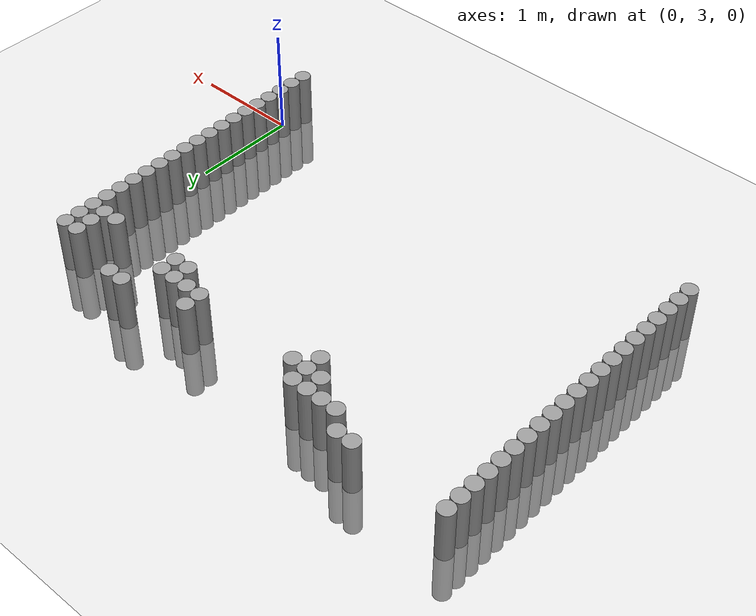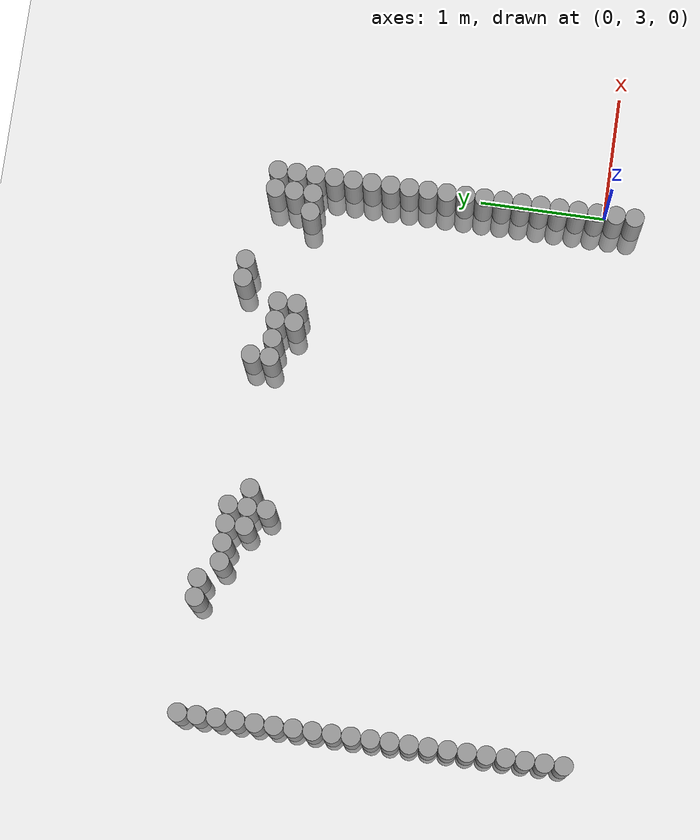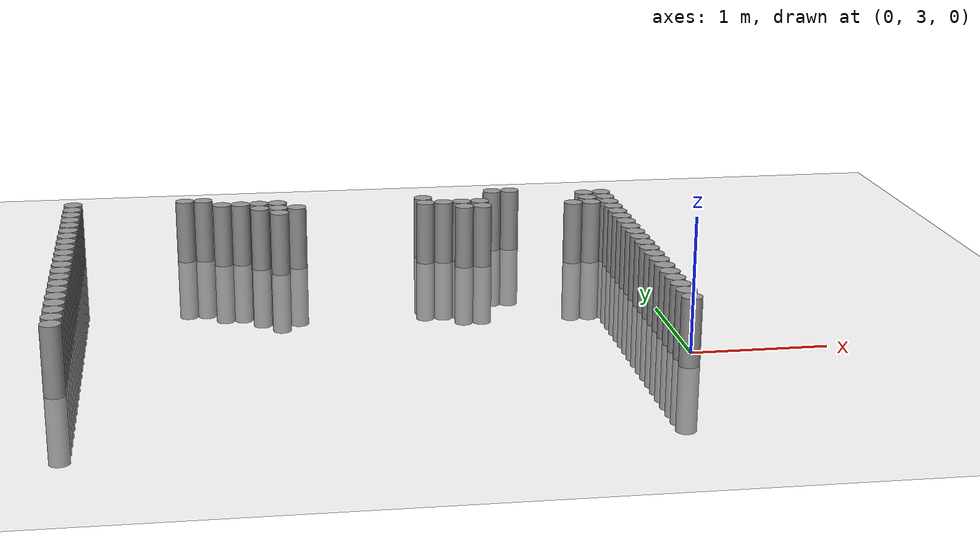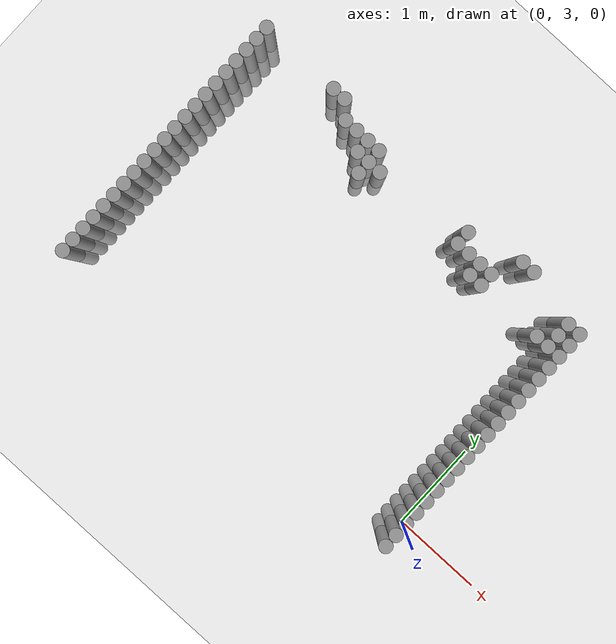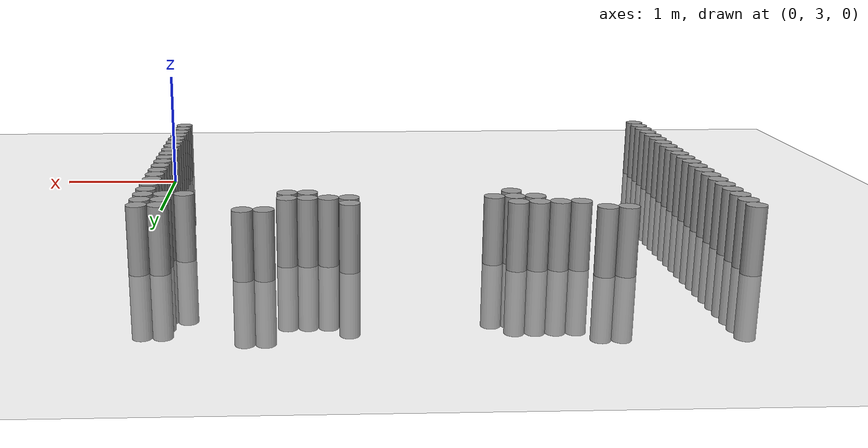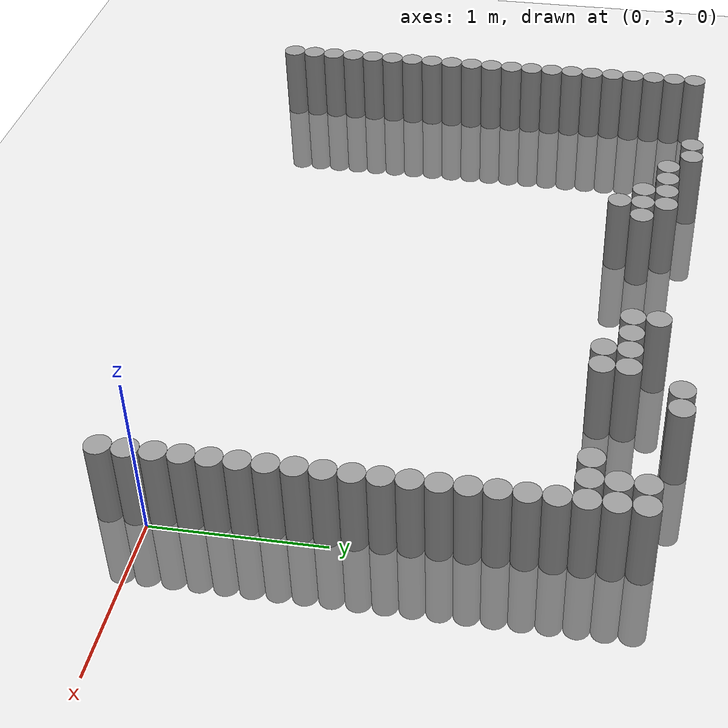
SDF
<sdf version="1.6">
 <world name="default">
  <model name="ground_plane">
   <static>1</static>
   <static>1</static>
   <link name="link">
    <collision name="collision">
     <geometry><plane><normal>0 0 1</normal><size>100 100</size></plane></geometry>
     <surface><friction><ode><mu>100</mu><mu2>50</mu2></ode></friction></surface>
    </collision>
    <visual name="visual">
     <cast_shadows>0</cast_shadows>
     <geometry><plane><normal>0 0 1</normal><size>100 100</size></plane></geometry>
     <material>
      <script><uri>file://media/materials/scripts/gazebo.material</uri><name>Gazebo/Grey</name></script>
     </material>
    </visual>
   </link>
  </model>
  <model name="unit_cylinder_64">
   <static>1</static>
   <pose>-0.075000 2.775000 0.000000 0.000000 0.000000 0.000000</pose>
   <link name="link">
    <inertial>
     <mass>1</mass>
     <inertia><ixx>0.145833</ixx><ixy>0</ixy><ixz>0</ixz><iyy>0.145833</iyy><iyz>0</iyz><izz>0.125</izz></inertia>
    </inertial>
    <collision name="collision">
     <geometry><cylinder><radius>0.075000</radius><length>1</length></cylinder></geometry>
    </collision>
    <visual name="visual">
     <geometry><cylinder><radius>0.075000</radius><length>1</length></cylinder></geometry>
     <material>
      <script><name>Gazebo/Grey</name><uri>file://media/materials/scripts/gazebo.material</uri></script>
     </material>
    </visual>
   </link>
  </model>
  <model name="unit_cylinder_65">
   <static>1</static>
   <pose>-4.425000 2.775000 0.000000 0.000000 0.000000 0.000000</pose>
   <link name="link">
    <inertial>
     <mass>1</mass>
     <inertia><ixx>0.145833</ixx><ixy>0</ixy><ixz>0</ixz><iyy>0.145833</iyy><iyz>0</iyz><izz>0.125</izz></inertia>
    </inertial>
    <collision name="collision">
     <geometry><cylinder><radius>0.075000</radius><length>1</length></cylinder></geometry>
    </collision>
    <visual name="visual">
     <geometry><cylinder><radius>0.075000</radius><length>1</length></cylinder></geometry>
     <material>
      <script><name>Gazebo/Grey</name><uri>file://media/materials/scripts/gazebo.material</uri></script>
     </material>
    </visual>
   </link>
  </model>
  <model name="unit_cylinder_66">
   <static>1</static>
   <pose>-0.075000 2.925000 0.000000 0.000000 0.000000 0.000000</pose>
   <link name="link">
    <inertial>
     <mass>1</mass>
     <inertia><ixx>0.145833</ixx><ixy>0</ixy><ixz>0</ixz><iyy>0.145833</iyy><iyz>0</iyz><izz>0.125</izz></inertia>
    </inertial>
    <collision name="collision">
     <geometry><cylinder><radius>0.075000</radius><length>1</length></cylinder></geometry>
    </collision>
    <visual name="visual">
     <geometry><cylinder><radius>0.075000</radius><length>1</length></cylinder></geometry>
     <material>
      <script><name>Gazebo/Grey</name><uri>file://media/materials/scripts/gazebo.material</uri></script>
     </material>
    </visual>
   </link>
  </model>
  <model name="unit_cylinder_67">
   <static>1</static>
   <pose>-4.425000 2.925000 0.000000 0.000000 0.000000 0.000000</pose>
   <link name="link">
    <inertial>
     <mass>1</mass>
     <inertia><ixx>0.145833</ixx><ixy>0</ixy><ixz>0</ixz><iyy>0.145833</iyy><iyz>0</iyz><izz>0.125</izz></inertia>
    </inertial>
    <collision name="collision">
     <geometry><cylinder><radius>0.075000</radius><length>1</length></cylinder></geometry>
    </collision>
    <visual name="visual">
     <geometry><cylinder><radius>0.075000</radius><length>1</length></cylinder></geometry>
     <material>
      <script><name>Gazebo/Grey</name><uri>file://media/materials/scripts/gazebo.material</uri></script>
     </material>
    </visual>
   </link>
  </model>
  <model name="unit_cylinder_68">
   <static>1</static>
   <pose>-0.075000 3.075000 0.000000 0.000000 0.000000 0.000000</pose>
   <link name="link">
    <inertial>
     <mass>1</mass>
     <inertia><ixx>0.145833</ixx><ixy>0</ixy><ixz>0</ixz><iyy>0.145833</iyy><iyz>0</iyz><izz>0.125</izz></inertia>
    </inertial>
    <collision name="collision">
     <geometry><cylinder><radius>0.075000</radius><length>1</length></cylinder></geometry>
    </collision>
    <visual name="visual">
     <geometry><cylinder><radius>0.075000</radius><length>1</length></cylinder></geometry>
     <material>
      <script><name>Gazebo/Grey</name><uri>file://media/materials/scripts/gazebo.material</uri></script>
     </material>
    </visual>
   </link>
  </model>
  <model name="unit_cylinder_69">
   <static>1</static>
   <pose>-4.425000 3.075000 0.000000 0.000000 0.000000 0.000000</pose>
   <link name="link">
    <inertial>
     <mass>1</mass>
     <inertia><ixx>0.145833</ixx><ixy>0</ixy><ixz>0</ixz><iyy>0.145833</iyy><iyz>0</iyz><izz>0.125</izz></inertia>
    </inertial>
    <collision name="collision">
     <geometry><cylinder><radius>0.075000</radius><length>1</length></cylinder></geometry>
    </collision>
    <visual name="visual">
     <geometry><cylinder><radius>0.075000</radius><length>1</length></cylinder></geometry>
     <material>
      <script><name>Gazebo/Grey</name><uri>file://media/materials/scripts/gazebo.material</uri></script>
     </material>
    </visual>
   </link>
  </model>
  <model name="unit_cylinder_70">
   <static>1</static>
   <pose>-0.075000 3.225000 0.000000 0.000000 0.000000 0.000000</pose>
   <link name="link">
    <inertial>
     <mass>1</mass>
     <inertia><ixx>0.145833</ixx><ixy>0</ixy><ixz>0</ixz><iyy>0.145833</iyy><iyz>0</iyz><izz>0.125</izz></inertia>
    </inertial>
    <collision name="collision">
     <geometry><cylinder><radius>0.075000</radius><length>1</length></cylinder></geometry>
    </collision>
    <visual name="visual">
     <geometry><cylinder><radius>0.075000</radius><length>1</length></cylinder></geometry>
     <material>
      <script><name>Gazebo/Grey</name><uri>file://media/materials/scripts/gazebo.material</uri></script>
     </material>
    </visual>
   </link>
  </model>
  <model name="unit_cylinder_71">
   <static>1</static>
   <pose>-4.425000 3.225000 0.000000 0.000000 0.000000 0.000000</pose>
   <link name="link">
    <inertial>
     <mass>1</mass>
     <inertia><ixx>0.145833</ixx><ixy>0</ixy><ixz>0</ixz><iyy>0.145833</iyy><iyz>0</iyz><izz>0.125</izz></inertia>
    </inertial>
    <collision name="collision">
     <geometry><cylinder><radius>0.075000</radius><length>1</length></cylinder></geometry>
    </collision>
    <visual name="visual">
     <geometry><cylinder><radius>0.075000</radius><length>1</length></cylinder></geometry>
     <material>
      <script><name>Gazebo/Grey</name><uri>file://media/materials/scripts/gazebo.material</uri></script>
     </material>
    </visual>
   </link>
  </model>
  <model name="unit_cylinder_72">
   <static>1</static>
   <pose>-0.075000 3.375000 0.000000 0.000000 0.000000 0.000000</pose>
   <link name="link">
    <inertial>
     <mass>1</mass>
     <inertia><ixx>0.145833</ixx><ixy>0</ixy><ixz>0</ixz><iyy>0.145833</iyy><iyz>0</iyz><izz>0.125</izz></inertia>
    </inertial>
    <collision name="collision">
     <geometry><cylinder><radius>0.075000</radius><length>1</length></cylinder></geometry>
    </collision>
    <visual name="visual">
     <geometry><cylinder><radius>0.075000</radius><length>1</length></cylinder></geometry>
     <material>
      <script><name>Gazebo/Grey</name><uri>file://media/materials/scripts/gazebo.material</uri></script>
     </material>
    </visual>
   </link>
  </model>
  <model name="unit_cylinder_73">
   <static>1</static>
   <pose>-4.425000 3.375000 0.000000 0.000000 0.000000 0.000000</pose>
   <link name="link">
    <inertial>
     <mass>1</mass>
     <inertia><ixx>0.145833</ixx><ixy>0</ixy><ixz>0</ixz><iyy>0.145833</iyy><iyz>0</iyz><izz>0.125</izz></inertia>
    </inertial>
    <collision name="collision">
     <geometry><cylinder><radius>0.075000</radius><length>1</length></cylinder></geometry>
    </collision>
    <visual name="visual">
     <geometry><cylinder><radius>0.075000</radius><length>1</length></cylinder></geometry>
     <material>
      <script><name>Gazebo/Grey</name><uri>file://media/materials/scripts/gazebo.material</uri></script>
     </material>
    </visual>
   </link>
  </model>
  <model name="unit_cylinder_74">
   <static>1</static>
   <pose>-0.075000 3.525000 0.000000 0.000000 0.000000 0.000000</pose>
   <link name="link">
    <inertial>
     <mass>1</mass>
     <inertia><ixx>0.145833</ixx><ixy>0</ixy><ixz>0</ixz><iyy>0.145833</iyy><iyz>0</iyz><izz>0.125</izz></inertia>
    </inertial>
    <collision name="collision">
     <geometry><cylinder><radius>0.075000</radius><length>1</length></cylinder></geometry>
    </collision>
    <visual name="visual">
     <geometry><cylinder><radius>0.075000</radius><length>1</length></cylinder></geometry>
     <material>
      <script><name>Gazebo/Grey</name><uri>file://media/materials/scripts/gazebo.material</uri></script>
     </material>
    </visual>
   </link>
  </model>
  <model name="unit_cylinder_75">
   <static>1</static>
   <pose>-4.425000 3.525000 0.000000 0.000000 0.000000 0.000000</pose>
   <link name="link">
    <inertial>
     <mass>1</mass>
     <inertia><ixx>0.145833</ixx><ixy>0</ixy><ixz>0</ixz><iyy>0.145833</iyy><iyz>0</iyz><izz>0.125</izz></inertia>
    </inertial>
    <collision name="collision">
     <geometry><cylinder><radius>0.075000</radius><length>1</length></cylinder></geometry>
    </collision>
    <visual name="visual">
     <geometry><cylinder><radius>0.075000</radius><length>1</length></cylinder></geometry>
     <material>
      <script><name>Gazebo/Grey</name><uri>file://media/materials/scripts/gazebo.material</uri></script>
     </material>
    </visual>
   </link>
  </model>
  <model name="unit_cylinder_76">
   <static>1</static>
   <pose>-0.075000 3.675000 0.000000 0.000000 0.000000 0.000000</pose>
   <link name="link">
    <inertial>
     <mass>1</mass>
     <inertia><ixx>0.145833</ixx><ixy>0</ixy><ixz>0</ixz><iyy>0.145833</iyy><iyz>0</iyz><izz>0.125</izz></inertia>
    </inertial>
    <collision name="collision">
     <geometry><cylinder><radius>0.075000</radius><length>1</length></cylinder></geometry>
    </collision>
    <visual name="visual">
     <geometry><cylinder><radius>0.075000</radius><length>1</length></cylinder></geometry>
     <material>
      <script><name>Gazebo/Grey</name><uri>file://media/materials/scripts/gazebo.material</uri></script>
     </material>
    </visual>
   </link>
  </model>
  <model name="unit_cylinder_77">
   <static>1</static>
   <pose>-4.425000 3.675000 0.000000 0.000000 0.000000 0.000000</pose>
   <link name="link">
    <inertial>
     <mass>1</mass>
     <inertia><ixx>0.145833</ixx><ixy>0</ixy><ixz>0</ixz><iyy>0.145833</iyy><iyz>0</iyz><izz>0.125</izz></inertia>
    </inertial>
    <collision name="collision">
     <geometry><cylinder><radius>0.075000</radius><length>1</length></cylinder></geometry>
    </collision>
    <visual name="visual">
     <geometry><cylinder><radius>0.075000</radius><length>1</length></cylinder></geometry>
     <material>
      <script><name>Gazebo/Grey</name><uri>file://media/materials/scripts/gazebo.material</uri></script>
     </material>
    </visual>
   </link>
  </model>
  <model name="unit_cylinder_78">
   <static>1</static>
   <pose>-0.075000 3.825000 0.000000 0.000000 0.000000 0.000000</pose>
   <link name="link">
    <inertial>
     <mass>1</mass>
     <inertia><ixx>0.145833</ixx><ixy>0</ixy><ixz>0</ixz><iyy>0.145833</iyy><iyz>0</iyz><izz>0.125</izz></inertia>
    </inertial>
    <collision name="collision">
     <geometry><cylinder><radius>0.075000</radius><length>1</length></cylinder></geometry>
    </collision>
    <visual name="visual">
     <geometry><cylinder><radius>0.075000</radius><length>1</length></cylinder></geometry>
     <material>
      <script><name>Gazebo/Grey</name><uri>file://media/materials/scripts/gazebo.material</uri></script>
     </material>
    </visual>
   </link>
  </model>
  <model name="unit_cylinder_79">
   <static>1</static>
   <pose>-4.425000 3.825000 0.000000 0.000000 0.000000 0.000000</pose>
   <link name="link">
    <inertial>
     <mass>1</mass>
     <inertia><ixx>0.145833</ixx><ixy>0</ixy><ixz>0</ixz><iyy>0.145833</iyy><iyz>0</iyz><izz>0.125</izz></inertia>
    </inertial>
    <collision name="collision">
     <geometry><cylinder><radius>0.075000</radius><length>1</length></cylinder></geometry>
    </collision>
    <visual name="visual">
     <geometry><cylinder><radius>0.075000</radius><length>1</length></cylinder></geometry>
     <material>
      <script><name>Gazebo/Grey</name><uri>file://media/materials/scripts/gazebo.material</uri></script>
     </material>
    </visual>
   </link>
  </model>
  <model name="unit_cylinder_80">
   <static>1</static>
   <pose>-0.075000 3.975000 0.000000 0.000000 0.000000 0.000000</pose>
   <link name="link">
    <inertial>
     <mass>1</mass>
     <inertia><ixx>0.145833</ixx><ixy>0</ixy><ixz>0</ixz><iyy>0.145833</iyy><iyz>0</iyz><izz>0.125</izz></inertia>
    </inertial>
    <collision name="collision">
     <geometry><cylinder><radius>0.075000</radius><length>1</length></cylinder></geometry>
    </collision>
    <visual name="visual">
     <geometry><cylinder><radius>0.075000</radius><length>1</length></cylinder></geometry>
     <material>
      <script><name>Gazebo/Grey</name><uri>file://media/materials/scripts/gazebo.material</uri></script>
     </material>
    </visual>
   </link>
  </model>
  <model name="unit_cylinder_81">
   <static>1</static>
   <pose>-4.425000 3.975000 0.000000 0.000000 0.000000 0.000000</pose>
   <link name="link">
    <inertial>
     <mass>1</mass>
     <inertia><ixx>0.145833</ixx><ixy>0</ixy><ixz>0</ixz><iyy>0.145833</iyy><iyz>0</iyz><izz>0.125</izz></inertia>
    </inertial>
    <collision name="collision">
     <geometry><cylinder><radius>0.075000</radius><length>1</length></cylinder></geometry>
    </collision>
    <visual name="visual">
     <geometry><cylinder><radius>0.075000</radius><length>1</length></cylinder></geometry>
     <material>
      <script><name>Gazebo/Grey</name><uri>file://media/materials/scripts/gazebo.material</uri></script>
     </material>
    </visual>
   </link>
  </model>
  <model name="unit_cylinder_82">
   <static>1</static>
   <pose>-0.075000 4.125000 0.000000 0.000000 0.000000 0.000000</pose>
   <link name="link">
    <inertial>
     <mass>1</mass>
     <inertia><ixx>0.145833</ixx><ixy>0</ixy><ixz>0</ixz><iyy>0.145833</iyy><iyz>0</iyz><izz>0.125</izz></inertia>
    </inertial>
    <collision name="collision">
     <geometry><cylinder><radius>0.075000</radius><length>1</length></cylinder></geometry>
    </collision>
    <visual name="visual">
     <geometry><cylinder><radius>0.075000</radius><length>1</length></cylinder></geometry>
     <material>
      <script><name>Gazebo/Grey</name><uri>file://media/materials/scripts/gazebo.material</uri></script>
     </material>
    </visual>
   </link>
  </model>
  <model name="unit_cylinder_83">
   <static>1</static>
   <pose>-4.425000 4.125000 0.000000 0.000000 0.000000 0.000000</pose>
   <link name="link">
    <inertial>
     <mass>1</mass>
     <inertia><ixx>0.145833</ixx><ixy>0</ixy><ixz>0</ixz><iyy>0.145833</iyy><iyz>0</iyz><izz>0.125</izz></inertia>
    </inertial>
    <collision name="collision">
     <geometry><cylinder><radius>0.075000</radius><length>1</length></cylinder></geometry>
    </collision>
    <visual name="visual">
     <geometry><cylinder><radius>0.075000</radius><length>1</length></cylinder></geometry>
     <material>
      <script><name>Gazebo/Grey</name><uri>file://media/materials/scripts/gazebo.material</uri></script>
     </material>
    </visual>
   </link>
  </model>
  <model name="unit_cylinder_84">
   <static>1</static>
   <pose>-0.075000 4.275000 0.000000 0.000000 0.000000 0.000000</pose>
   <link name="link">
    <inertial>
     <mass>1</mass>
     <inertia><ixx>0.145833</ixx><ixy>0</ixy><ixz>0</ixz><iyy>0.145833</iyy><iyz>0</iyz><izz>0.125</izz></inertia>
    </inertial>
    <collision name="collision">
     <geometry><cylinder><radius>0.075000</radius><length>1</length></cylinder></geometry>
    </collision>
    <visual name="visual">
     <geometry><cylinder><radius>0.075000</radius><length>1</length></cylinder></geometry>
     <material>
      <script><name>Gazebo/Grey</name><uri>file://media/materials/scripts/gazebo.material</uri></script>
     </material>
    </visual>
   </link>
  </model>
  <model name="unit_cylinder_85">
   <static>1</static>
   <pose>-4.425000 4.275000 0.000000 0.000000 0.000000 0.000000</pose>
   <link name="link">
    <inertial>
     <mass>1</mass>
     <inertia><ixx>0.145833</ixx><ixy>0</ixy><ixz>0</ixz><iyy>0.145833</iyy><iyz>0</iyz><izz>0.125</izz></inertia>
    </inertial>
    <collision name="collision">
     <geometry><cylinder><radius>0.075000</radius><length>1</length></cylinder></geometry>
    </collision>
    <visual name="visual">
     <geometry><cylinder><radius>0.075000</radius><length>1</length></cylinder></geometry>
     <material>
      <script><name>Gazebo/Grey</name><uri>file://media/materials/scripts/gazebo.material</uri></script>
     </material>
    </visual>
   </link>
  </model>
  <model name="unit_cylinder_86">
   <static>1</static>
   <pose>-0.075000 4.425000 0.000000 0.000000 0.000000 0.000000</pose>
   <link name="link">
    <inertial>
     <mass>1</mass>
     <inertia><ixx>0.145833</ixx><ixy>0</ixy><ixz>0</ixz><iyy>0.145833</iyy><iyz>0</iyz><izz>0.125</izz></inertia>
    </inertial>
    <collision name="collision">
     <geometry><cylinder><radius>0.075000</radius><length>1</length></cylinder></geometry>
    </collision>
    <visual name="visual">
     <geometry><cylinder><radius>0.075000</radius><length>1</length></cylinder></geometry>
     <material>
      <script><name>Gazebo/Grey</name><uri>file://media/materials/scripts/gazebo.material</uri></script>
     </material>
    </visual>
   </link>
  </model>
  <model name="unit_cylinder_87">
   <static>1</static>
   <pose>-4.425000 4.425000 0.000000 0.000000 0.000000 0.000000</pose>
   <link name="link">
    <inertial>
     <mass>1</mass>
     <inertia><ixx>0.145833</ixx><ixy>0</ixy><ixz>0</ixz><iyy>0.145833</iyy><iyz>0</iyz><izz>0.125</izz></inertia>
    </inertial>
    <collision name="collision">
     <geometry><cylinder><radius>0.075000</radius><length>1</length></cylinder></geometry>
    </collision>
    <visual name="visual">
     <geometry><cylinder><radius>0.075000</radius><length>1</length></cylinder></geometry>
     <material>
      <script><name>Gazebo/Grey</name><uri>file://media/materials/scripts/gazebo.material</uri></script>
     </material>
    </visual>
   </link>
  </model>
  <model name="unit_cylinder_88">
   <static>1</static>
   <pose>-0.075000 4.575000 0.000000 0.000000 0.000000 0.000000</pose>
   <link name="link">
    <inertial>
     <mass>1</mass>
     <inertia><ixx>0.145833</ixx><ixy>0</ixy><ixz>0</ixz><iyy>0.145833</iyy><iyz>0</iyz><izz>0.125</izz></inertia>
    </inertial>
    <collision name="collision">
     <geometry><cylinder><radius>0.075000</radius><length>1</length></cylinder></geometry>
    </collision>
    <visual name="visual">
     <geometry><cylinder><radius>0.075000</radius><length>1</length></cylinder></geometry>
     <material>
      <script><name>Gazebo/Grey</name><uri>file://media/materials/scripts/gazebo.material</uri></script>
     </material>
    </visual>
   </link>
  </model>
  <model name="unit_cylinder_89">
   <static>1</static>
   <pose>-4.425000 4.575000 0.000000 0.000000 0.000000 0.000000</pose>
   <link name="link">
    <inertial>
     <mass>1</mass>
     <inertia><ixx>0.145833</ixx><ixy>0</ixy><ixz>0</ixz><iyy>0.145833</iyy><iyz>0</iyz><izz>0.125</izz></inertia>
    </inertial>
    <collision name="collision">
     <geometry><cylinder><radius>0.075000</radius><length>1</length></cylinder></geometry>
    </collision>
    <visual name="visual">
     <geometry><cylinder><radius>0.075000</radius><length>1</length></cylinder></geometry>
     <material>
      <script><name>Gazebo/Grey</name><uri>file://media/materials/scripts/gazebo.material</uri></script>
     </material>
    </visual>
   </link>
  </model>
  <model name="unit_cylinder_90">
   <static>1</static>
   <pose>-0.075000 4.725000 0.000000 0.000000 0.000000 0.000000</pose>
   <link name="link">
    <inertial>
     <mass>1</mass>
     <inertia><ixx>0.145833</ixx><ixy>0</ixy><ixz>0</ixz><iyy>0.145833</iyy><iyz>0</iyz><izz>0.125</izz></inertia>
    </inertial>
    <collision name="collision">
     <geometry><cylinder><radius>0.075000</radius><length>1</length></cylinder></geometry>
    </collision>
    <visual name="visual">
     <geometry><cylinder><radius>0.075000</radius><length>1</length></cylinder></geometry>
     <material>
      <script><name>Gazebo/Grey</name><uri>file://media/materials/scripts/gazebo.material</uri></script>
     </material>
    </visual>
   </link>
  </model>
  <model name="unit_cylinder_91">
   <static>1</static>
   <pose>-4.425000 4.725000 0.000000 0.000000 0.000000 0.000000</pose>
   <link name="link">
    <inertial>
     <mass>1</mass>
     <inertia><ixx>0.145833</ixx><ixy>0</ixy><ixz>0</ixz><iyy>0.145833</iyy><iyz>0</iyz><izz>0.125</izz></inertia>
    </inertial>
    <collision name="collision">
     <geometry><cylinder><radius>0.075000</radius><length>1</length></cylinder></geometry>
    </collision>
    <visual name="visual">
     <geometry><cylinder><radius>0.075000</radius><length>1</length></cylinder></geometry>
     <material>
      <script><name>Gazebo/Grey</name><uri>file://media/materials/scripts/gazebo.material</uri></script>
     </material>
    </visual>
   </link>
  </model>
  <model name="unit_cylinder_92">
   <static>1</static>
   <pose>-0.075000 4.875000 0.000000 0.000000 0.000000 0.000000</pose>
   <link name="link">
    <inertial>
     <mass>1</mass>
     <inertia><ixx>0.145833</ixx><ixy>0</ixy><ixz>0</ixz><iyy>0.145833</iyy><iyz>0</iyz><izz>0.125</izz></inertia>
    </inertial>
    <collision name="collision">
     <geometry><cylinder><radius>0.075000</radius><length>1</length></cylinder></geometry>
    </collision>
    <visual name="visual">
     <geometry><cylinder><radius>0.075000</radius><length>1</length></cylinder></geometry>
     <material>
      <script><name>Gazebo/Grey</name><uri>file://media/materials/scripts/gazebo.material</uri></script>
     </material>
    </visual>
   </link>
  </model>
  <model name="unit_cylinder_93">
   <static>1</static>
   <pose>-4.425000 4.875000 0.000000 0.000000 0.000000 0.000000</pose>
   <link name="link">
    <inertial>
     <mass>1</mass>
     <inertia><ixx>0.145833</ixx><ixy>0</ixy><ixz>0</ixz><iyy>0.145833</iyy><iyz>0</iyz><izz>0.125</izz></inertia>
    </inertial>
    <collision name="collision">
     <geometry><cylinder><radius>0.075000</radius><length>1</length></cylinder></geometry>
    </collision>
    <visual name="visual">
     <geometry><cylinder><radius>0.075000</radius><length>1</length></cylinder></geometry>
     <material>
      <script><name>Gazebo/Grey</name><uri>file://media/materials/scripts/gazebo.material</uri></script>
     </material>
    </visual>
   </link>
  </model>
  <model name="unit_cylinder_94">
   <static>1</static>
   <pose>-0.075000 5.025000 0.000000 0.000000 0.000000 0.000000</pose>
   <link name="link">
    <inertial>
     <mass>1</mass>
     <inertia><ixx>0.145833</ixx><ixy>0</ixy><ixz>0</ixz><iyy>0.145833</iyy><iyz>0</iyz><izz>0.125</izz></inertia>
    </inertial>
    <collision name="collision">
     <geometry><cylinder><radius>0.075000</radius><length>1</length></cylinder></geometry>
    </collision>
    <visual name="visual">
     <geometry><cylinder><radius>0.075000</radius><length>1</length></cylinder></geometry>
     <material>
      <script><name>Gazebo/Grey</name><uri>file://media/materials/scripts/gazebo.material</uri></script>
     </material>
    </visual>
   </link>
  </model>
  <model name="unit_cylinder_95">
   <static>1</static>
   <pose>-4.425000 5.025000 0.000000 0.000000 0.000000 0.000000</pose>
   <link name="link">
    <inertial>
     <mass>1</mass>
     <inertia><ixx>0.145833</ixx><ixy>0</ixy><ixz>0</ixz><iyy>0.145833</iyy><iyz>0</iyz><izz>0.125</izz></inertia>
    </inertial>
    <collision name="collision">
     <geometry><cylinder><radius>0.075000</radius><length>1</length></cylinder></geometry>
    </collision>
    <visual name="visual">
     <geometry><cylinder><radius>0.075000</radius><length>1</length></cylinder></geometry>
     <material>
      <script><name>Gazebo/Grey</name><uri>file://media/materials/scripts/gazebo.material</uri></script>
     </material>
    </visual>
   </link>
  </model>
  <model name="unit_cylinder_96">
   <static>1</static>
   <pose>-4.425000 5.175000 0.000000 0.000000 0.000000 0.000000</pose>
   <link name="link">
    <inertial>
     <mass>1</mass>
     <inertia><ixx>0.145833</ixx><ixy>0</ixy><ixz>0</ixz><iyy>0.145833</iyy><iyz>0</iyz><izz>0.125</izz></inertia>
    </inertial>
    <collision name="collision">
     <geometry><cylinder><radius>0.075000</radius><length>1</length></cylinder></geometry>
    </collision>
    <visual name="visual">
     <geometry><cylinder><radius>0.075000</radius><length>1</length></cylinder></geometry>
     <material>
      <script><name>Gazebo/Grey</name><uri>file://media/materials/scripts/gazebo.material</uri></script>
     </material>
    </visual>
   </link>
  </model>
  <model name="unit_cylinder_97">
   <static>1</static>
   <pose>-4.425000 5.325000 0.000000 0.000000 0.000000 0.000000</pose>
   <link name="link">
    <inertial>
     <mass>1</mass>
     <inertia><ixx>0.145833</ixx><ixy>0</ixy><ixz>0</ixz><iyy>0.145833</iyy><iyz>0</iyz><izz>0.125</izz></inertia>
    </inertial>
    <collision name="collision">
     <geometry><cylinder><radius>0.075000</radius><length>1</length></cylinder></geometry>
    </collision>
    <visual name="visual">
     <geometry><cylinder><radius>0.075000</radius><length>1</length></cylinder></geometry>
     <material>
      <script><name>Gazebo/Grey</name><uri>file://media/materials/scripts/gazebo.material</uri></script>
     </material>
    </visual>
   </link>
  </model>
  <model name="unit_cylinder_98">
   <static>1</static>
   <pose>-4.425000 5.475000 0.000000 0.000000 0.000000 0.000000</pose>
   <link name="link">
    <inertial>
     <mass>1</mass>
     <inertia><ixx>0.145833</ixx><ixy>0</ixy><ixz>0</ixz><iyy>0.145833</iyy><iyz>0</iyz><izz>0.125</izz></inertia>
    </inertial>
    <collision name="collision">
     <geometry><cylinder><radius>0.075000</radius><length>1</length></cylinder></geometry>
    </collision>
    <visual name="visual">
     <geometry><cylinder><radius>0.075000</radius><length>1</length></cylinder></geometry>
     <material>
      <script><name>Gazebo/Grey</name><uri>file://media/materials/scripts/gazebo.material</uri></script>
     </material>
    </visual>
   </link>
  </model>
  <model name="unit_cylinder_99">
   <static>1</static>
   <pose>-4.425000 5.625000 0.000000 0.000000 0.000000 0.000000</pose>
   <link name="link">
    <inertial>
     <mass>1</mass>
     <inertia><ixx>0.145833</ixx><ixy>0</ixy><ixz>0</ixz><iyy>0.145833</iyy><iyz>0</iyz><izz>0.125</izz></inertia>
    </inertial>
    <collision name="collision">
     <geometry><cylinder><radius>0.075000</radius><length>1</length></cylinder></geometry>
    </collision>
    <visual name="visual">
     <geometry><cylinder><radius>0.075000</radius><length>1</length></cylinder></geometry>
     <material>
      <script><name>Gazebo/Grey</name><uri>file://media/materials/scripts/gazebo.material</uri></script>
     </material>
    </visual>
   </link>
  </model>
  <model name="unit_cylinder_100">
   <static>1</static>
   <pose>-4.425000 5.775000 0.000000 0.000000 0.000000 0.000000</pose>
   <link name="link">
    <inertial>
     <mass>1</mass>
     <inertia><ixx>0.145833</ixx><ixy>0</ixy><ixz>0</ixz><iyy>0.145833</iyy><iyz>0</iyz><izz>0.125</izz></inertia>
    </inertial>
    <collision name="collision">
     <geometry><cylinder><radius>0.075000</radius><length>1</length></cylinder></geometry>
    </collision>
    <visual name="visual">
     <geometry><cylinder><radius>0.075000</radius><length>1</length></cylinder></geometry>
     <material>
      <script><name>Gazebo/Grey</name><uri>file://media/materials/scripts/gazebo.material</uri></script>
     </material>
    </visual>
   </link>
  </model>
  <model name="unit_cylinder_138">
   <static>1</static>
   <pose>-3.525000 5.775000 0.000000 0.000000 0.000000 0.000000</pose>
   <link name="link">
    <inertial>
     <mass>1</mass>
     <inertia><ixx>0.145833</ixx><ixy>0</ixy><ixz>0</ixz><iyy>0.145833</iyy><iyz>0</iyz><izz>0.125</izz></inertia>
    </inertial>
    <collision name="collision">
     <geometry><cylinder><radius>0.075000</radius><length>1</length></cylinder></geometry>
    </collision>
    <visual name="visual">
     <geometry><cylinder><radius>0.075000</radius><length>1</length></cylinder></geometry>
     <material>
      <script><name>Gazebo/Grey</name><uri>file://media/materials/scripts/gazebo.material</uri></script>
     </material>
    </visual>
   </link>
  </model>
  <model name="unit_cylinder_140">
   <static>1</static>
   <pose>-3.375000 5.775000 0.000000 0.000000 0.000000 0.000000</pose>
   <link name="link">
    <inertial>
     <mass>1</mass>
     <inertia><ixx>0.145833</ixx><ixy>0</ixy><ixz>0</ixz><iyy>0.145833</iyy><iyz>0</iyz><izz>0.125</izz></inertia>
    </inertial>
    <collision name="collision">
     <geometry><cylinder><radius>0.075000</radius><length>1</length></cylinder></geometry>
    </collision>
    <visual name="visual">
     <geometry><cylinder><radius>0.075000</radius><length>1</length></cylinder></geometry>
     <material>
      <script><name>Gazebo/Grey</name><uri>file://media/materials/scripts/gazebo.material</uri></script>
     </material>
    </visual>
   </link>
  </model>
  <model name="unit_cylinder_141">
   <static>1</static>
   <pose>-3.225000 5.625000 0.000000 0.000000 0.000000 0.000000</pose>
   <link name="link">
    <inertial>
     <mass>1</mass>
     <inertia><ixx>0.145833</ixx><ixy>0</ixy><ixz>0</ixz><iyy>0.145833</iyy><iyz>0</iyz><izz>0.125</izz></inertia>
    </inertial>
    <collision name="collision">
     <geometry><cylinder><radius>0.075000</radius><length>1</length></cylinder></geometry>
    </collision>
    <visual name="visual">
     <geometry><cylinder><radius>0.075000</radius><length>1</length></cylinder></geometry>
     <material>
      <script><name>Gazebo/Grey</name><uri>file://media/materials/scripts/gazebo.material</uri></script>
     </material>
    </visual>
   </link>
  </model>
  <model name="unit_cylinder_143">
   <static>1</static>
   <pose>-3.075000 5.625000 0.000000 0.000000 0.000000 0.000000</pose>
   <link name="link">
    <inertial>
     <mass>1</mass>
     <inertia><ixx>0.145833</ixx><ixy>0</ixy><ixz>0</ixz><iyy>0.145833</iyy><iyz>0</iyz><izz>0.125</izz></inertia>
    </inertial>
    <collision name="collision">
     <geometry><cylinder><radius>0.075000</radius><length>1</length></cylinder></geometry>
    </collision>
    <visual name="visual">
     <geometry><cylinder><radius>0.075000</radius><length>1</length></cylinder></geometry>
     <material>
      <script><name>Gazebo/Grey</name><uri>file://media/materials/scripts/gazebo.material</uri></script>
     </material>
    </visual>
   </link>
  </model>
  <model name="unit_cylinder_145">
   <static>1</static>
   <pose>-2.925000 5.475000 0.000000 0.000000 0.000000 0.000000</pose>
   <link name="link">
    <inertial>
     <mass>1</mass>
     <inertia><ixx>0.145833</ixx><ixy>0</ixy><ixz>0</ixz><iyy>0.145833</iyy><iyz>0</iyz><izz>0.125</izz></inertia>
    </inertial>
    <collision name="collision">
     <geometry><cylinder><radius>0.075000</radius><length>1</length></cylinder></geometry>
    </collision>
    <visual name="visual">
     <geometry><cylinder><radius>0.075000</radius><length>1</length></cylinder></geometry>
     <material>
      <script><name>Gazebo/Grey</name><uri>file://media/materials/scripts/gazebo.material</uri></script>
     </material>
    </visual>
   </link>
  </model>
  <model name="unit_cylinder_146">
   <static>1</static>
   <pose>-2.925000 5.625000 0.000000 0.000000 0.000000 0.000000</pose>
   <link name="link">
    <inertial>
     <mass>1</mass>
     <inertia><ixx>0.145833</ixx><ixy>0</ixy><ixz>0</ixz><iyy>0.145833</iyy><iyz>0</iyz><izz>0.125</izz></inertia>
    </inertial>
    <collision name="collision">
     <geometry><cylinder><radius>0.075000</radius><length>1</length></cylinder></geometry>
    </collision>
    <visual name="visual">
     <geometry><cylinder><radius>0.075000</radius><length>1</length></cylinder></geometry>
     <material>
      <script><name>Gazebo/Grey</name><uri>file://media/materials/scripts/gazebo.material</uri></script>
     </material>
    </visual>
   </link>
  </model>
  <model name="unit_cylinder_149">
   <static>1</static>
   <pose>-2.775000 5.325000 0.000000 0.000000 0.000000 0.000000</pose>
   <link name="link">
    <inertial>
     <mass>1</mass>
     <inertia><ixx>0.145833</ixx><ixy>0</ixy><ixz>0</ixz><iyy>0.145833</iyy><iyz>0</iyz><izz>0.125</izz></inertia>
    </inertial>
    <collision name="collision">
     <geometry><cylinder><radius>0.075000</radius><length>1</length></cylinder></geometry>
    </collision>
    <visual name="visual">
     <geometry><cylinder><radius>0.075000</radius><length>1</length></cylinder></geometry>
     <material>
      <script><name>Gazebo/Grey</name><uri>file://media/materials/scripts/gazebo.material</uri></script>
     </material>
    </visual>
   </link>
  </model>
  <model name="unit_cylinder_150">
   <static>1</static>
   <pose>-2.775000 5.475000 0.000000 0.000000 0.000000 0.000000</pose>
   <link name="link">
    <inertial>
     <mass>1</mass>
     <inertia><ixx>0.145833</ixx><ixy>0</ixy><ixz>0</ixz><iyy>0.145833</iyy><iyz>0</iyz><izz>0.125</izz></inertia>
    </inertial>
    <collision name="collision">
     <geometry><cylinder><radius>0.075000</radius><length>1</length></cylinder></geometry>
    </collision>
    <visual name="visual">
     <geometry><cylinder><radius>0.075000</radius><length>1</length></cylinder></geometry>
     <material>
      <script><name>Gazebo/Grey</name><uri>file://media/materials/scripts/gazebo.material</uri></script>
     </material>
    </visual>
   </link>
  </model>
  <model name="unit_cylinder_151">
   <static>1</static>
   <pose>-2.775000 5.625000 0.000000 0.000000 0.000000 0.000000</pose>
   <link name="link">
    <inertial>
     <mass>1</mass>
     <inertia><ixx>0.145833</ixx><ixy>0</ixy><ixz>0</ixz><iyy>0.145833</iyy><iyz>0</iyz><izz>0.125</izz></inertia>
    </inertial>
    <collision name="collision">
     <geometry><cylinder><radius>0.075000</radius><length>1</length></cylinder></geometry>
    </collision>
    <visual name="visual">
     <geometry><cylinder><radius>0.075000</radius><length>1</length></cylinder></geometry>
     <material>
      <script><name>Gazebo/Grey</name><uri>file://media/materials/scripts/gazebo.material</uri></script>
     </material>
    </visual>
   </link>
  </model>
  <model name="unit_cylinder_153">
   <static>1</static>
   <pose>-2.625000 5.475000 0.000000 0.000000 0.000000 0.000000</pose>
   <link name="link">
    <inertial>
     <mass>1</mass>
     <inertia><ixx>0.145833</ixx><ixy>0</ixy><ixz>0</ixz><iyy>0.145833</iyy><iyz>0</iyz><izz>0.125</izz></inertia>
    </inertial>
    <collision name="collision">
     <geometry><cylinder><radius>0.075000</radius><length>1</length></cylinder></geometry>
    </collision>
    <visual name="visual">
     <geometry><cylinder><radius>0.075000</radius><length>1</length></cylinder></geometry>
     <material>
      <script><name>Gazebo/Grey</name><uri>file://media/materials/scripts/gazebo.material</uri></script>
     </material>
    </visual>
   </link>
  </model>
  <model name="unit_cylinder_169">
   <static>1</static>
   <pose>-1.575000 5.475000 0.000000 0.000000 0.000000 0.000000</pose>
   <link name="link">
    <inertial>
     <mass>1</mass>
     <inertia><ixx>0.145833</ixx><ixy>0</ixy><ixz>0</ixz><iyy>0.145833</iyy><iyz>0</iyz><izz>0.125</izz></inertia>
    </inertial>
    <collision name="collision">
     <geometry><cylinder><radius>0.075000</radius><length>1</length></cylinder></geometry>
    </collision>
    <visual name="visual">
     <geometry><cylinder><radius>0.075000</radius><length>1</length></cylinder></geometry>
     <material>
      <script><name>Gazebo/Grey</name><uri>file://media/materials/scripts/gazebo.material</uri></script>
     </material>
    </visual>
   </link>
  </model>
  <model name="unit_cylinder_170">
   <static>1</static>
   <pose>-1.575000 5.625000 0.000000 0.000000 0.000000 0.000000</pose>
   <link name="link">
    <inertial>
     <mass>1</mass>
     <inertia><ixx>0.145833</ixx><ixy>0</ixy><ixz>0</ixz><iyy>0.145833</iyy><iyz>0</iyz><izz>0.125</izz></inertia>
    </inertial>
    <collision name="collision">
     <geometry><cylinder><radius>0.075000</radius><length>1</length></cylinder></geometry>
    </collision>
    <visual name="visual">
     <geometry><cylinder><radius>0.075000</radius><length>1</length></cylinder></geometry>
     <material>
      <script><name>Gazebo/Grey</name><uri>file://media/materials/scripts/gazebo.material</uri></script>
     </material>
    </visual>
   </link>
  </model>
  <model name="unit_cylinder_177">
   <static>1</static>
   <pose>-1.425000 5.475000 0.000000 0.000000 0.000000 0.000000</pose>
   <link name="link">
    <inertial>
     <mass>1</mass>
     <inertia><ixx>0.145833</ixx><ixy>0</ixy><ixz>0</ixz><iyy>0.145833</iyy><iyz>0</iyz><izz>0.125</izz></inertia>
    </inertial>
    <collision name="collision">
     <geometry><cylinder><radius>0.075000</radius><length>1</length></cylinder></geometry>
    </collision>
    <visual name="visual">
     <geometry><cylinder><radius>0.075000</radius><length>1</length></cylinder></geometry>
     <material>
      <script><name>Gazebo/Grey</name><uri>file://media/materials/scripts/gazebo.material</uri></script>
     </material>
    </visual>
   </link>
  </model>
  <model name="unit_cylinder_181">
   <static>1</static>
   <pose>-1.275000 5.325000 0.000000 0.000000 0.000000 0.000000</pose>
   <link name="link">
    <inertial>
     <mass>1</mass>
     <inertia><ixx>0.145833</ixx><ixy>0</ixy><ixz>0</ixz><iyy>0.145833</iyy><iyz>0</iyz><izz>0.125</izz></inertia>
    </inertial>
    <collision name="collision">
     <geometry><cylinder><radius>0.075000</radius><length>1</length></cylinder></geometry>
    </collision>
    <visual name="visual">
     <geometry><cylinder><radius>0.075000</radius><length>1</length></cylinder></geometry>
     <material>
      <script><name>Gazebo/Grey</name><uri>file://media/materials/scripts/gazebo.material</uri></script>
     </material>
    </visual>
   </link>
  </model>
  <model name="unit_cylinder_182">
   <static>1</static>
   <pose>-1.275000 5.475000 0.000000 0.000000 0.000000 0.000000</pose>
   <link name="link">
    <inertial>
     <mass>1</mass>
     <inertia><ixx>0.145833</ixx><ixy>0</ixy><ixz>0</ixz><iyy>0.145833</iyy><iyz>0</iyz><izz>0.125</izz></inertia>
    </inertial>
    <collision name="collision">
     <geometry><cylinder><radius>0.075000</radius><length>1</length></cylinder></geometry>
    </collision>
    <visual name="visual">
     <geometry><cylinder><radius>0.075000</radius><length>1</length></cylinder></geometry>
     <material>
      <script><name>Gazebo/Grey</name><uri>file://media/materials/scripts/gazebo.material</uri></script>
     </material>
    </visual>
   </link>
  </model>
  <model name="unit_cylinder_183">
   <static>1</static>
   <pose>-1.125000 5.325000 0.000000 0.000000 0.000000 0.000000</pose>
   <link name="link">
    <inertial>
     <mass>1</mass>
     <inertia><ixx>0.145833</ixx><ixy>0</ixy><ixz>0</ixz><iyy>0.145833</iyy><iyz>0</iyz><izz>0.125</izz></inertia>
    </inertial>
    <collision name="collision">
     <geometry><cylinder><radius>0.075000</radius><length>1</length></cylinder></geometry>
    </collision>
    <visual name="visual">
     <geometry><cylinder><radius>0.075000</radius><length>1</length></cylinder></geometry>
     <material>
      <script><name>Gazebo/Grey</name><uri>file://media/materials/scripts/gazebo.material</uri></script>
     </material>
    </visual>
   </link>
  </model>
  <model name="unit_cylinder_184">
   <static>1</static>
   <pose>-1.125000 5.475000 0.000000 0.000000 0.000000 0.000000</pose>
   <link name="link">
    <inertial>
     <mass>1</mass>
     <inertia><ixx>0.145833</ixx><ixy>0</ixy><ixz>0</ixz><iyy>0.145833</iyy><iyz>0</iyz><izz>0.125</izz></inertia>
    </inertial>
    <collision name="collision">
     <geometry><cylinder><radius>0.075000</radius><length>1</length></cylinder></geometry>
    </collision>
    <visual name="visual">
     <geometry><cylinder><radius>0.075000</radius><length>1</length></cylinder></geometry>
     <material>
      <script><name>Gazebo/Grey</name><uri>file://media/materials/scripts/gazebo.material</uri></script>
     </material>
    </visual>
   </link>
  </model>
  <model name="unit_cylinder_185">
   <static>1</static>
   <pose>-0.975000 5.775000 0.000000 0.000000 0.000000 0.000000</pose>
   <link name="link">
    <inertial>
     <mass>1</mass>
     <inertia><ixx>0.145833</ixx><ixy>0</ixy><ixz>0</ixz><iyy>0.145833</iyy><iyz>0</iyz><izz>0.125</izz></inertia>
    </inertial>
    <collision name="collision">
     <geometry><cylinder><radius>0.075000</radius><length>1</length></cylinder></geometry>
    </collision>
    <visual name="visual">
     <geometry><cylinder><radius>0.075000</radius><length>1</length></cylinder></geometry>
     <material>
      <script><name>Gazebo/Grey</name><uri>file://media/materials/scripts/gazebo.material</uri></script>
     </material>
    </visual>
   </link>
  </model>
  <model name="unit_cylinder_189">
   <static>1</static>
   <pose>-0.825000 5.775000 0.000000 0.000000 0.000000 0.000000</pose>
   <link name="link">
    <inertial>
     <mass>1</mass>
     <inertia><ixx>0.145833</ixx><ixy>0</ixy><ixz>0</ixz><iyy>0.145833</iyy><iyz>0</iyz><izz>0.125</izz></inertia>
    </inertial>
    <collision name="collision">
     <geometry><cylinder><radius>0.075000</radius><length>1</length></cylinder></geometry>
    </collision>
    <visual name="visual">
     <geometry><cylinder><radius>0.075000</radius><length>1</length></cylinder></geometry>
     <material>
      <script><name>Gazebo/Grey</name><uri>file://media/materials/scripts/gazebo.material</uri></script>
     </material>
    </visual>
   </link>
  </model>
  <model name="unit_cylinder_199">
   <static>1</static>
   <pose>-0.375000 5.325000 0.000000 0.000000 0.000000 0.000000</pose>
   <link name="link">
    <inertial>
     <mass>1</mass>
     <inertia><ixx>0.145833</ixx><ixy>0</ixy><ixz>0</ixz><iyy>0.145833</iyy><iyz>0</iyz><izz>0.125</izz></inertia>
    </inertial>
    <collision name="collision">
     <geometry><cylinder><radius>0.075000</radius><length>1</length></cylinder></geometry>
    </collision>
    <visual name="visual">
     <geometry><cylinder><radius>0.075000</radius><length>1</length></cylinder></geometry>
     <material>
      <script><name>Gazebo/Grey</name><uri>file://media/materials/scripts/gazebo.material</uri></script>
     </material>
    </visual>
   </link>
  </model>
  <model name="unit_cylinder_205">
   <static>1</static>
   <pose>-0.225000 5.325000 0.000000 0.000000 0.000000 0.000000</pose>
   <link name="link">
    <inertial>
     <mass>1</mass>
     <inertia><ixx>0.145833</ixx><ixy>0</ixy><ixz>0</ixz><iyy>0.145833</iyy><iyz>0</iyz><izz>0.125</izz></inertia>
    </inertial>
    <collision name="collision">
     <geometry><cylinder><radius>0.075000</radius><length>1</length></cylinder></geometry>
    </collision>
    <visual name="visual">
     <geometry><cylinder><radius>0.075000</radius><length>1</length></cylinder></geometry>
     <material>
      <script><name>Gazebo/Grey</name><uri>file://media/materials/scripts/gazebo.material</uri></script>
     </material>
    </visual>
   </link>
  </model>
  <model name="unit_cylinder_206">
   <static>1</static>
   <pose>-0.225000 5.475000 0.000000 0.000000 0.000000 0.000000</pose>
   <link name="link">
    <inertial>
     <mass>1</mass>
     <inertia><ixx>0.145833</ixx><ixy>0</ixy><ixz>0</ixz><iyy>0.145833</iyy><iyz>0</iyz><izz>0.125</izz></inertia>
    </inertial>
    <collision name="collision">
     <geometry><cylinder><radius>0.075000</radius><length>1</length></cylinder></geometry>
    </collision>
    <visual name="visual">
     <geometry><cylinder><radius>0.075000</radius><length>1</length></cylinder></geometry>
     <material>
      <script><name>Gazebo/Grey</name><uri>file://media/materials/scripts/gazebo.material</uri></script>
     </material>
    </visual>
   </link>
  </model>
  <model name="unit_cylinder_207">
   <static>1</static>
   <pose>-0.225000 5.625000 0.000000 0.000000 0.000000 0.000000</pose>
   <link name="link">
    <inertial>
     <mass>1</mass>
     <inertia><ixx>0.145833</ixx><ixy>0</ixy><ixz>0</ixz><iyy>0.145833</iyy><iyz>0</iyz><izz>0.125</izz></inertia>
    </inertial>
    <collision name="collision">
     <geometry><cylinder><radius>0.075000</radius><length>1</length></cylinder></geometry>
    </collision>
    <visual name="visual">
     <geometry><cylinder><radius>0.075000</radius><length>1</length></cylinder></geometry>
     <material>
      <script><name>Gazebo/Grey</name><uri>file://media/materials/scripts/gazebo.material</uri></script>
     </material>
    </visual>
   </link>
  </model>
  <model name="unit_cylinder_226">
   <static>1</static>
   <pose>-0.075000 5.175000 0.000000 0.000000 0.000000 0.000000</pose>
   <link name="link">
    <inertial>
     <mass>1</mass>
     <inertia><ixx>0.145833</ixx><ixy>0</ixy><ixz>0</ixz><iyy>0.145833</iyy><iyz>0</iyz><izz>0.125</izz></inertia>
    </inertial>
    <collision name="collision">
     <geometry><cylinder><radius>0.075000</radius><length>1</length></cylinder></geometry>
    </collision>
    <visual name="visual">
     <geometry><cylinder><radius>0.075000</radius><length>1</length></cylinder></geometry>
     <material>
      <script><name>Gazebo/Grey</name><uri>file://media/materials/scripts/gazebo.material</uri></script>
     </material>
    </visual>
   </link>
  </model>
  <model name="unit_cylinder_227">
   <static>1</static>
   <pose>-0.075000 5.325000 0.000000 0.000000 0.000000 0.000000</pose>
   <link name="link">
    <inertial>
     <mass>1</mass>
     <inertia><ixx>0.145833</ixx><ixy>0</ixy><ixz>0</ixz><iyy>0.145833</iyy><iyz>0</iyz><izz>0.125</izz></inertia>
    </inertial>
    <collision name="collision">
     <geometry><cylinder><radius>0.075000</radius><length>1</length></cylinder></geometry>
    </collision>
    <visual name="visual">
     <geometry><cylinder><radius>0.075000</radius><length>1</length></cylinder></geometry>
     <material>
      <script><name>Gazebo/Grey</name><uri>file://media/materials/scripts/gazebo.material</uri></script>
     </material>
    </visual>
   </link>
  </model>
  <model name="unit_cylinder_228">
   <static>1</static>
   <pose>-0.075000 5.475000 0.000000 0.000000 0.000000 0.000000</pose>
   <link name="link">
    <inertial>
     <mass>1</mass>
     <inertia><ixx>0.145833</ixx><ixy>0</ixy><ixz>0</ixz><iyy>0.145833</iyy><iyz>0</iyz><izz>0.125</izz></inertia>
    </inertial>
    <collision name="collision">
     <geometry><cylinder><radius>0.075000</radius><length>1</length></cylinder></geometry>
    </collision>
    <visual name="visual">
     <geometry><cylinder><radius>0.075000</radius><length>1</length></cylinder></geometry>
     <material>
      <script><name>Gazebo/Grey</name><uri>file://media/materials/scripts/gazebo.material</uri></script>
     </material>
    </visual>
   </link>
  </model>
  <model name="unit_cylinder_229">
   <static>1</static>
   <pose>-0.075000 5.625000 0.000000 0.000000 0.000000 0.000000</pose>
   <link name="link">
    <inertial>
     <mass>1</mass>
     <inertia><ixx>0.145833</ixx><ixy>0</ixy><ixz>0</ixz><iyy>0.145833</iyy><iyz>0</iyz><izz>0.125</izz></inertia>
    </inertial>
    <collision name="collision">
     <geometry><cylinder><radius>0.075000</radius><length>1</length></cylinder></geometry>
    </collision>
    <visual name="visual">
     <geometry><cylinder><radius>0.075000</radius><length>1</length></cylinder></geometry>
     <material>
      <script><name>Gazebo/Grey</name><uri>file://media/materials/scripts/gazebo.material</uri></script>
     </material>
    </visual>
   </link>
  </model>
 </world>
</sdf>
